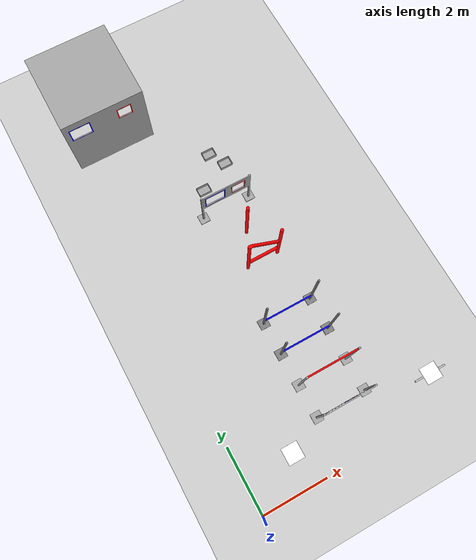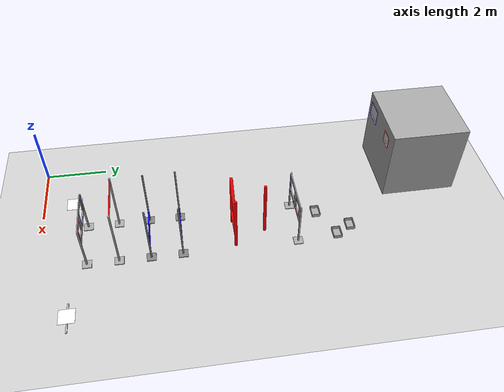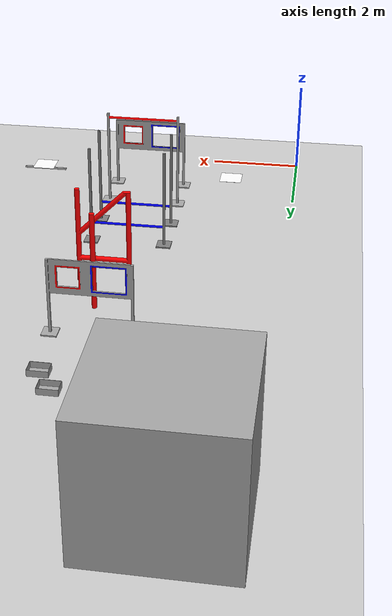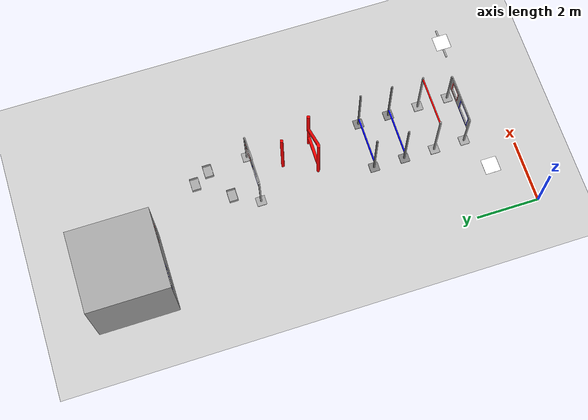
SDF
<?xml version='1.0' encoding='utf-8'?>
<sdf version="1.9">
  <world name="imav2026_indoor">
    <physics type="ode">
      <max_step_size>0.004</max_step_size>
      <real_time_factor>1.0</real_time_factor>
      <real_time_update_rate>250</real_time_update_rate>
    </physics>
    <plugin filename="gz-sim-physics-system" name="gz::sim::systems::Physics" />
    <plugin filename="gz-sim-user-commands-system" name="gz::sim::systems::UserCommands" />
    <plugin filename="gz-sim-scene-broadcaster-system" name="gz::sim::systems::SceneBroadcaster" />
    <plugin filename="gz-sim-contact-system" name="gz::sim::systems::Contact" />
    <plugin filename="gz-sim-imu-system" name="gz::sim::systems::Imu" />
    <plugin filename="gz-sim-air-pressure-system" name="gz::sim::systems::AirPressure" />
    <plugin filename="gz-sim-navsat-system" name="gz::sim::systems::NavSat" />
    <plugin filename="gz-sim-magnetometer-system" name="gz::sim::systems::Magnetometer" />
    <plugin filename="gz-sim-sensors-system" name="gz::sim::systems::Sensors">

</plugin>
    <gui fullscreen="false">
      <plugin filename="MinimalScene" name="3D View">
        <gz-gui>
          <title>3D View</title>
          <property type="bool" key="showTitleBar">false</property>
          <property type="string" key="state">docked</property>
        </gz-gui>
        <engine>ogre2</engine>
        <scene>scene</scene>
        <ambient_light>0.4 0.4 0.4</ambient_light>
        <background_color>0.8 0.8 0.8</background_color>
        <camera_pose>-6 0 6 0 0.5 0</camera_pose>
        <camera_clip>
          <near>0.25</near>
          <far>25000</far>
        </camera_clip>
      </plugin>
      <plugin filename="EntityContextMenuPlugin" name="Entity context menu">
        <gz-gui>
          <property key="state" type="string">floating</property>
          <property key="width" type="double">5</property>
          <property key="height" type="double">5</property>
          <property key="showTitleBar" type="bool">false</property>
        </gz-gui>
      </plugin>
      <plugin filename="GzSceneManager" name="Scene Manager">
        <gz-gui>
          <property key="resizable" type="bool">false</property>
          <property key="width" type="double">5</property>
          <property key="height" type="double">5</property>
          <property key="state" type="string">floating</property>
          <property key="showTitleBar" type="bool">false</property>
        </gz-gui>
      </plugin>
      <plugin filename="InteractiveViewControl" name="Interactive view control">
        <gz-gui>
          <property key="resizable" type="bool">false</property>
          <property key="width" type="double">5</property>
          <property key="height" type="double">5</property>
          <property key="state" type="string">floating</property>
          <property key="showTitleBar" type="bool">false</property>
        </gz-gui>
      </plugin>
      <plugin filename="CameraTracking" name="Camera Tracking">
        <gz-gui>
          <property key="resizable" type="bool">false</property>
          <property key="width" type="double">5</property>
          <property key="height" type="double">5</property>
          <property key="state" type="string">floating</property>
          <property key="showTitleBar" type="bool">false</property>
        </gz-gui>
      </plugin>
      <plugin filename="MarkerManager" name="Marker manager">
        <gz-gui>
          <property key="resizable" type="bool">false</property>
          <property key="width" type="double">5</property>
          <property key="height" type="double">5</property>
          <property key="state" type="string">floating</property>
          <property key="showTitleBar" type="bool">false</property>
        </gz-gui>
      </plugin>
      <plugin filename="SelectEntities" name="Select Entities">
        <gz-gui>
          <anchors target="Select entities">
            <line own="right" target="right" />
            <line own="top" target="top" />
          </anchors>
          <property key="resizable" type="bool">false</property>
          <property key="width" type="double">5</property>
          <property key="height" type="double">5</property>
          <property key="state" type="string">floating</property>
          <property key="showTitleBar" type="bool">false</property>
        </gz-gui>
      </plugin>
      <plugin filename="VisualizationCapabilities" name="Visualization Capabilities">
        <gz-gui>
          <property key="resizable" type="bool">false</property>
          <property key="width" type="double">5</property>
          <property key="height" type="double">5</property>
          <property key="state" type="string">floating</property>
          <property key="showTitleBar" type="bool">false</property>
        </gz-gui>
      </plugin>
      <plugin filename="Spawn" name="Spawn Entities">
        <gz-gui>
          <anchors target="Select entities">
            <line own="right" target="right" />
            <line own="top" target="top" />
          </anchors>
          <property key="resizable" type="bool">false</property>
          <property key="width" type="double">5</property>
          <property key="height" type="double">5</property>
          <property key="state" type="string">floating</property>
          <property key="showTitleBar" type="bool">false</property>
        </gz-gui>
      </plugin>
      <plugin name="World control" filename="WorldControl">
        <gz-gui>
          <title>World control</title>
          <property type="bool" key="showTitleBar">0</property>
          <property type="bool" key="resizable">0</property>
          <property type="double" key="height">72</property>
          <property type="double" key="width">121</property>
          <property type="double" key="z">1</property>
          <property type="string" key="state">floating</property>
          <anchors target="3D View">
            <line own="left" target="left" />
            <line own="bottom" target="bottom" />
          </anchors>
        </gz-gui>
        <play_pause>1</play_pause>
        <step>1</step>
        <start_paused>1</start_paused>
      </plugin>
      <plugin name="World stats" filename="WorldStats">
        <gz-gui>
          <title>World stats</title>
          <property type="bool" key="showTitleBar">0</property>
          <property type="bool" key="resizable">0</property>
          <property type="double" key="height">110</property>
          <property type="double" key="width">290</property>
          <property type="double" key="z">1</property>
          <property type="string" key="state">floating</property>
          <anchors target="3D View">
            <line own="right" target="right" />
            <line own="bottom" target="bottom" />
          </anchors>
        </gz-gui>
        <sim_time>1</sim_time>
        <real_time>1</real_time>
        <real_time_factor>1</real_time_factor>
        <iterations>1</iterations>
      </plugin>
      <plugin name="Entity tree" filename="EntityTree" />
    </gui>
    <gravity>0 0 -9.8</gravity>
    <magnetic_field>6e-06 2.3e-05 -4.2e-05</magnetic_field>
    <atmosphere type="adiabatic">
      <temperature>288.15</temperature>
      <temperature_gradient>0.1</temperature_gradient>
    </atmosphere>
    <scene>
      <grid>false</grid>
      <ambient>0.4 0.4 0.4 1</ambient>
      <background>0.7 0.7 0.7 1</background>
      <shadows>true</shadows>
    </scene>
    <model name="ground_plane">
      <pose>3.5 7 0 0 0 0</pose>
      <static>true</static>
      <link name="link">
        <collision name="collision">
          <geometry>
            <plane>
              <normal>0 0 1</normal>
              <size>7 14</size>
            </plane>
          </geometry>
          <surface>
            <friction>
              <ode />
            </friction>
            <bounce />
            <contact />
          </surface>
        </collision>
        <visual name="visual">
          <geometry>
            <plane>
              <normal>0 0 1</normal>
              <size>7 14</size>
            </plane>
          </geometry>
          <material>
            <ambient>0.8 0.8 0.8 1</ambient>
            <diffuse>0.8 0.8 0.8 1</diffuse>
            <specular>0.8 0.8 0.8 1</specular>
          </material>
        </visual>
        <pose>0 0 0 0 -0 0</pose>
        <inertial>
          <pose>0 0 0 0 -0 0</pose>
          <mass>1</mass>
          <inertia>
            <ixx>1</ixx>
            <ixy>0</ixy>
            <ixz>0</ixz>
            <iyy>1</iyy>
            <iyz>0</iyz>
            <izz>1</izz>
          </inertia>
        </inertial>
        <enable_wind>false</enable_wind>
      </link>
      <pose>0 0 0 0 -0 0</pose>
      <self_collide>false</self_collide>
    </model>
    <include>
      <static>true</static>
      <uri>model://takeoff_platform</uri>
      <pose>1.5 1 0.05 0 -0 0</pose>
    </include>
    <model name="Window">
      <static>true</static>
      <pose>3.5 1.5 0 0 -0 0</pose>
      <link name="link">
        <visual name="visual">
          <geometry>
            <mesh>
              <uri>model://obstacles/meshes/M1-Windows.dae</uri>
            </mesh>
          </geometry>
        </visual>
        <collision name="collision">
          <geometry>
            <mesh>
              <uri>model://obstacles/meshes/M1-Windows.dae</uri>
            </mesh>
          </geometry>
        </collision>
      </link>
    </model>
    <model name="RedBar1">
      <static>true</static>
      <pose>3.5 2.5 0 0 -0 0</pose>
      <link name="link">
        <visual name="visual">
          <geometry>
            <mesh>
              <uri>model://obstacles/meshes/M1-Bar_1980mm.dae</uri>
            </mesh>
          </geometry>
        </visual>
        <collision name="collision">
          <geometry>
            <mesh>
              <uri>model://obstacles/meshes/M1-Bar_1980mm.dae</uri>
            </mesh>
          </geometry>
        </collision>
      </link>
    </model>
    <model name="BlueBar1">
      <static>true</static>
      <pose>3.5 3.5 0 0 -0 0</pose>
      <link name="link">
        <visual name="visual">
          <geometry>
            <mesh>
              <uri>model://obstacles/meshes/M1-Bar_blue_400mm.dae</uri>
            </mesh>
          </geometry>
        </visual>
        <collision name="collision">
          <geometry>
            <mesh>
              <uri>model://obstacles/meshes/M1-Bar_blue_400mm.dae</uri>
            </mesh>
          </geometry>
        </collision>
      </link>
    </model>
    <model name="BlueBar2">
      <static>true</static>
      <pose>3.5 4.5 0 0 -0 0</pose>
      <link name="link">
        <visual name="visual">
          <geometry>
            <mesh>
              <uri>model://obstacles/meshes/M1-Bar_blue_400mm.dae</uri>
            </mesh>
          </geometry>
        </visual>
        <collision name="collision">
          <geometry>
            <mesh>
              <uri>model://obstacles/meshes/M1-Bar_blue_400mm.dae</uri>
            </mesh>
          </geometry>
        </collision>
      </link>
    </model>
    <model name="Tubes">
      <static>true</static>
      <pose>3.5 6.2 0 0 -0 0</pose>
      <link name="link">
        <visual name="visual">
          <geometry>
            <mesh>
              <uri>model://obstacles/meshes/M1-Tubes.dae</uri>
            </mesh>
          </geometry>
        </visual>
        <collision name="collision">
          <geometry>
            <mesh>
              <uri>model://obstacles/meshes/M1-Tubes.dae</uri>
            </mesh>
          </geometry>
        </collision>
      </link>
    </model>
    <model name="Window2">
      <static>true</static>
      <pose>3.5 8.2 0 0 -0 0</pose>
      <link name="link">
        <visual name="visual">
          <geometry>
            <mesh>
              <uri>model://obstacles/meshes/M1-Windows.dae</uri>
            </mesh>
          </geometry>
        </visual>
        <collision name="collision">
          <geometry>
            <mesh>
              <uri>model://obstacles/meshes/M1-Windows.dae</uri>
            </mesh>
          </geometry>
        </collision>
      </link>
    </model>
    <model name="M2Box">
      <static>true</static>
      <pose> 1.25 12.75 0 0 -0 0</pose>
      <link name="link">
        <visual name="visual">
          <geometry>
            <mesh>
              <uri>model://obstacles/meshes/M2-Room.dae</uri>
            </mesh>
          </geometry>
        </visual>
        <collision name="collision">
          <geometry>
            <mesh>
              <uri>model://obstacles/meshes/M2-Room.dae</uri>
            </mesh>
          </geometry>
        </collision>
      </link>
    </model>
    <model name="M3Box1">
      <static>true</static>
      <pose> 3 9 0 0 -0 0</pose>
      <link name="link">
        <visual name="visual">
          <geometry>
            <mesh>
              <uri>model://obstacles/meshes/M3-Box.dae</uri>
            </mesh>
          </geometry>
        </visual>
        <collision name="collision">
          <geometry>
            <mesh>
              <uri>model://obstacles/meshes/M3-Box.dae</uri>
            </mesh>
          </geometry>
        </collision>
      </link>
    </model>
    <model name="M3Box2">
      <static>true</static>
      <pose> 4 9.5 0 0 -0 0</pose>
      <link name="link">
        <visual name="visual">
          <geometry>
            <mesh>
              <uri>model://obstacles/meshes/M3-Box.dae</uri>
            </mesh>
          </geometry>
        </visual>
        <collision name="collision">
          <geometry>
            <mesh>
              <uri>model://obstacles/meshes/M3-Box.dae</uri>
            </mesh>
          </geometry>
        </collision>
      </link>
    </model>
    <model name="M3Box3">
      <static>true</static>
      <pose> 3.7 10 0 0 -0 0</pose>
      <link name="link">
        <visual name="visual">
          <geometry>
            <mesh>
              <uri>model://obstacles/meshes/M3-Box.dae</uri>
            </mesh>
          </geometry>
        </visual>
        <collision name="collision">
          <geometry>
            <mesh>
              <uri>model://obstacles/meshes/M3-Box.dae</uri>
            </mesh>
          </geometry>
        </collision>
      </link>
    </model>
    <include>
      <uri>model://landing_platform</uri>
      <pose>6 1 0 0 -0 0</pose>
    </include>
    <light name="sunUTC" type="directional">
      <pose>0 0 500 0 -0 0</pose>
      <cast_shadows>true</cast_shadows>
      <intensity>1</intensity>
      <direction>0.001 0.625 -0.78</direction>
      <diffuse>0.904 0.904 0.904 1</diffuse>
      <specular>0.271 0.271 0.271 1</specular>
      <attenuation>
        <range>2000</range>
        <linear>0</linear>
        <constant>1</constant>
        <quadratic>0</quadratic>
      </attenuation>
      <spot>
        <inner_angle>0</inner_angle>
        <outer_angle>0</outer_angle>
        <falloff>0</falloff>
      </spot>
    </light>
    <spherical_coordinates>
      <surface_model>EARTH_WGS84</surface_model>
      <world_frame_orientation>ENU</world_frame_orientation>
      <latitude_deg>47.397971057728974</latitude_deg>
      <longitude_deg> 8.546163739800146</longitude_deg>
      <elevation>0</elevation>
    </spherical_coordinates>
  </world>
</sdf>

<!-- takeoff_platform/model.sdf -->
<sdf version="1.10">
  <model name="takeoff_platform">
    <static>true</static>

    <link name="plate_link">
      <pose>0 0 0 0 0 0</pose>

      <collision name="collision">
        <geometry>
          <box>
            <size>0.5 0.5 0.05</size>
          </box>
        </geometry>
      </collision>

      <visual name="visual">
        <geometry>
          <mesh>
            <uri>model://takeoff_platform/meshes/aruco_plate.obj</uri>
            <scale>1 1 1</scale>
          </mesh>
        </geometry>
        <material>
          <diffuse>1 1 1 1</diffuse>
          <specular>0 0 0 1</specular>
          <pbr>
            <metal>
              <albedo_map>model://takeoff_platform/materials/textures/aruco_id0.png</albedo_map>
              <metalness>0.0</metalness>
              <roughness>0.9</roughness>
            </metal>
          </pbr>
        </material>
      </visual>
    </link>
  </model>
</sdf>

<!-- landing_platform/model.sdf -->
<sdf version="1.9">
<model name="landing_platform">

  <link name="base">
    <inertial>
      <mass>1.0</mass>
      <inertia><ixx>0.1</ixx><iyy>0.1</iyy><izz>0.1</izz></inertia>
    </inertial>
    <visual name="rail_visual">
      <geometry><box><size>1 0.05 0.05</size></box></geometry>
    </visual>
    <collision name="rail_collision">
      <geometry><box><size>1 0.05 0.05</size></box></geometry>
    </collision>
  </link>

  <joint name="world_fixed" type="fixed">
    <parent>world</parent>
    <child>base</child>
  </joint>

  <link name="slider">
    <pose>0 0 0.1 0 0 0</pose>
    <inertial>
      <mass>1.0</mass>
      <inertia><ixx>0.1</ixx><iyy>0.1</iyy><izz>0.1</izz></inertia>
    </inertial>
    <visual name="visual">
        <geometry>
          <mesh>
            <uri>model://landing_platform/meshes/aruco_plate.obj</uri>
            <scale>1 1 1</scale>
          </mesh>
        </geometry>
        <material>
          <diffuse>1 1 1 1</diffuse>
          <specular>0 0 0 1</specular>
          <pbr>
            <metal>
              <albedo_map>model://landing_platform/materials/textures/aruco_id1.png</albedo_map>
              <metalness>0.0</metalness>
              <roughness>0.9</roughness>
            </metal>
          </pbr>
        </material>
      </visual>

  <collision name="collision">
    <geometry>
      <box>
          <size>0.5 0.5 0.05</size>
      </box>
    </geometry>
  </collision>
  </link>

  <joint name="slider_joint" type="prismatic">
    <parent>base</parent>
    <child>slider</child>
    <axis>
      <xyz>1 0 0</xyz>
      <limit>
        <lower>-0.5</lower>
        <upper>0.5</upper>
        <velocity>0.1</velocity>
        <effort>100000</effort>
      </limit>
      <dynamics>
        <damping>0.5</damping>
      </dynamics>
    </axis>
  </joint>

  <plugin
    filename="gz-sim-joint-controller-system"
    name="gz::sim::systems::JointController">
    <joint_name>slider_joint</joint_name>
    <type>velocity</type>
    <topic>/slider/cmd_vel</topic>
    <use_force_commands>true</use_force_commands>
    <p_gain>200</p_gain>
    <i_gain>0.5</i_gain>
    <d_gain>20</d_gain>
  </plugin>

</model>
</sdf>
